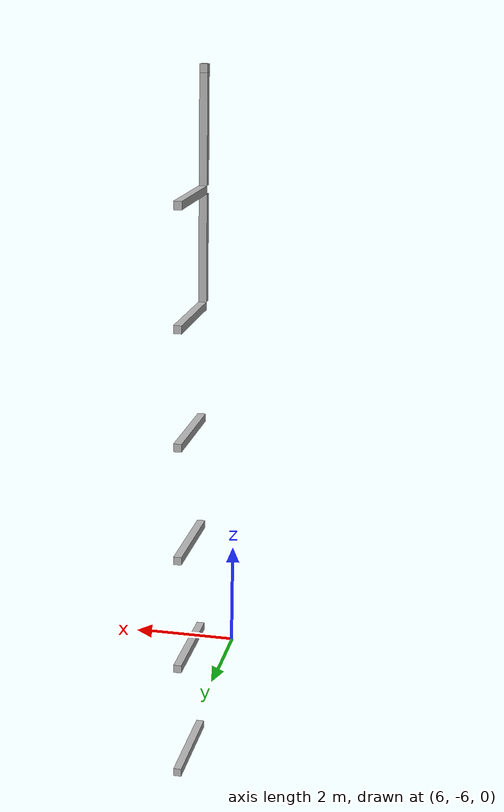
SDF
<sdf version="1.7">
 <world name="default">
  <model name="orthogonal_747_2.000.15_TS">
   <static>1</static>
   <link name="y_link_0_0_6">
    <inertial>
     <mass>1</mass>
     <inertia>
      <ixx>0.166667</ixx>
      <ixy>0</ixy>
      <ixz>0</ixz>
      <iyy>0.166667</iyy>
      <iyz>0</iyz>
      <izz>0.166667</izz>
     </inertia>
    </inertial>
    <pose>12.9 1.075 1.075 0 -0 0</pose>
    <visual name="visual_0">
     <laser_retro>134</laser_retro>
     <geometry><box><size>0.15 1e-06 0.15</size></box></geometry>
     <material>
      <script><name>Gazebo/Grey</name><uri>file://media/materials/scripts/gazebo.material</uri></script>
      <shader type="pixel"><normal_map>__default__</normal_map></shader>
      <ambient>0.678 0.498 0.659 1</ambient>
      <diffuse>0.7 0.7 0.7 1</diffuse>
      <specular>0.01 0.01 0.01 1</specular>
      <emissive>0 0 0 1</emissive>
     </material>
     <pose>0 -1 0 0 -0 0</pose>
     <transparency>1</transparency>
    </visual>
    <visual name="visual_1">
     <laser_retro>135</laser_retro>
     <geometry><box><size>0.15 1e-06 0.15</size></box></geometry>
     <material>
      <script><name>Gazebo/Grey</name><uri>file://media/materials/scripts/gazebo.material</uri></script>
      <shader type="pixel"><normal_map>__default__</normal_map></shader>
      <ambient>0.447 0.624 0.812 1</ambient>
      <diffuse>0.7 0.7 0.7 1</diffuse>
      <specular>0.01 0.01 0.01 1</specular>
      <emissive>0 0 0 1</emissive>
     </material>
     <pose>0 1 0 0 -0 0</pose>
     <transparency>1</transparency>
    </visual>
    <visual name="visual_2">
     <laser_retro>136</laser_retro>
     <geometry><box><size>0.15 2 1e-06</size></box></geometry>
     <material>
      <script><name>Gazebo/Grey</name><uri>file://media/materials/scripts/gazebo.material</uri></script>
      <shader type="pixel"><normal_map>__default__</normal_map></shader>
      <ambient>0.988 0.686 0.243 1</ambient>
      <diffuse>0.7 0.7 0.7 1</diffuse>
      <specular>0.01 0.01 0.01 1</specular>
      <emissive>0 0 0 1</emissive>
     </material>
     <pose>0 0 -0.075 0 -0 0</pose>
     <transparency>1</transparency>
    </visual>
    <visual name="visual_3">
     <laser_retro>137</laser_retro>
     <geometry><box><size>1e-06 2 0.15</size></box></geometry>
     <material>
      <script><name>Gazebo/Grey</name><uri>file://media/materials/scripts/gazebo.material</uri></script>
      <shader type="pixel"><normal_map>__default__</normal_map></shader>
      <ambient>0.988 0.914 0.31 1</ambient>
      <diffuse>0.7 0.7 0.7 1</diffuse>
      <specular>0.01 0.01 0.01 1</specular>
      <emissive>0 0 0 1</emissive>
     </material>
     <pose>0.075 0 0 0 -0 0</pose>
     <transparency>1</transparency>
    </visual>
    <visual name="visual_4">
     <laser_retro>138</laser_retro>
     <geometry><box><size>0.15 2 1e-06</size></box></geometry>
     <material>
      <script><name>Gazebo/Grey</name><uri>file://media/materials/scripts/gazebo.material</uri></script>
      <shader type="pixel"><normal_map>__default__</normal_map></shader>
      <ambient>0.937 0.161 0.161 1</ambient>
      <diffuse>0.7 0.7 0.7 1</diffuse>
      <specular>0.01 0.01 0.01 1</specular>
      <emissive>0 0 0 1</emissive>
     </material>
     <pose>0 0 0.075 0 -0 0</pose>
     <transparency>1</transparency>
    </visual>
    <visual name="visual_5">
     <laser_retro>139</laser_retro>
     <geometry><box><size>1e-06 2 0.15</size></box></geometry>
     <material>
      <script><name>Gazebo/Grey</name><uri>file://media/materials/scripts/gazebo.material</uri></script>
      <shader type="pixel"><normal_map>__default__</normal_map></shader>
      <ambient>0.541 0.886 0.204 1</ambient>
      <diffuse>0.7 0.7 0.7 1</diffuse>
      <specular>0.01 0.01 0.01 1</specular>
      <emissive>0 0 0 1</emissive>
     </material>
     <pose>-0.075 0 0 0 -0 0</pose>
     <transparency>1</transparency>
    </visual>
    <visual name="visual_texture">
     <geometry><box><size>0.149985 1.9998 0.149985</size></box></geometry>
     <material>
      <script>
       <uri>model://BASE_MODELS/simple_block_v2_textured/materials/scripts</uri>
       <uri>model://BASE_MODELS/simple_block_v2_textured/materials/textures</uri>
       <name>metal</name>
      </script>
     </material>
     <laser_retro>140</laser_retro>
    </visual>
    <collision name="collision">
     <geometry><box><size>0.15 2 0.15</size></box></geometry>
     <surface>
      <friction>
       <ode><mu>1</mu><mu2>1</mu2><fdir1>0 0 0</fdir1><slip1>0</slip1><slip2>0</slip2></ode>
       <torsional>
        <coefficient>1</coefficient>
        <patch_radius>0</patch_radius>
        <surface_radius>0</surface_radius>
        <use_patch_radius>1</use_patch_radius>
        <ode><slip>0</slip></ode>
       </torsional>
      </friction>
      <bounce><restitution_coefficient>0</restitution_coefficient><threshold>1e+06</threshold></bounce>
      <contact>
       <collide_without_contact>0</collide_without_contact>
       <collide_without_contact_bitmask>1</collide_without_contact_bitmask>
       <collide_bitmask>1</collide_bitmask>
       <ode>
        <soft_cfm>0</soft_cfm>
        <soft_erp>0.2</soft_erp>
        <kp>1e+13</kp>
        <kd>1</kd>
        <max_vel>0.01</max_vel>
        <min_depth>0</min_depth>
       </ode>
       <bullet>
        <split_impulse>1</split_impulse>
        <split_impulse_penetration_threshold>-0.01</split_impulse_penetration_threshold>
        <soft_cfm>0</soft_cfm>
        <soft_erp>0.2</soft_erp>
        <kp>1e+13</kp>
        <kd>1</kd>
       </bullet>
      </contact>
     </surface>
    </collision>
   </link>
   <link name="y_link_1_0_6">
    <inertial>
     <mass>1</mass>
     <inertia>
      <ixx>0.166667</ixx>
      <ixy>0</ixy>
      <ixz>0</ixz>
      <iyy>0.166667</iyy>
      <iyz>0</iyz>
      <izz>0.166667</izz>
     </inertia>
    </inertial>
    <pose>12.9 1.075 3.225 0 -0 0</pose>
    <visual name="visual_0">
     <laser_retro>925</laser_retro>
     <geometry><box><size>0.15 1e-06 0.15</size></box></geometry>
     <material>
      <script><name>Gazebo/Grey</name><uri>file://media/materials/scripts/gazebo.material</uri></script>
      <shader type="pixel"><normal_map>__default__</normal_map></shader>
      <ambient>0.678 0.498 0.659 1</ambient>
      <diffuse>0.7 0.7 0.7 1</diffuse>
      <specular>0.01 0.01 0.01 1</specular>
      <emissive>0 0 0 1</emissive>
     </material>
     <pose>0 -1 0 0 -0 0</pose>
     <transparency>1</transparency>
    </visual>
    <visual name="visual_1">
     <laser_retro>926</laser_retro>
     <geometry><box><size>0.15 1e-06 0.15</size></box></geometry>
     <material>
      <script><name>Gazebo/Grey</name><uri>file://media/materials/scripts/gazebo.material</uri></script>
      <shader type="pixel"><normal_map>__default__</normal_map></shader>
      <ambient>0.447 0.624 0.812 1</ambient>
      <diffuse>0.7 0.7 0.7 1</diffuse>
      <specular>0.01 0.01 0.01 1</specular>
      <emissive>0 0 0 1</emissive>
     </material>
     <pose>0 1 0 0 -0 0</pose>
     <transparency>1</transparency>
    </visual>
    <visual name="visual_2">
     <laser_retro>927</laser_retro>
     <geometry><box><size>0.15 2 1e-06</size></box></geometry>
     <material>
      <script><name>Gazebo/Grey</name><uri>file://media/materials/scripts/gazebo.material</uri></script>
      <shader type="pixel"><normal_map>__default__</normal_map></shader>
      <ambient>0.988 0.686 0.243 1</ambient>
      <diffuse>0.7 0.7 0.7 1</diffuse>
      <specular>0.01 0.01 0.01 1</specular>
      <emissive>0 0 0 1</emissive>
     </material>
     <pose>0 0 -0.075 0 -0 0</pose>
     <transparency>1</transparency>
    </visual>
    <visual name="visual_3">
     <laser_retro>928</laser_retro>
     <geometry><box><size>1e-06 2 0.15</size></box></geometry>
     <material>
      <script><name>Gazebo/Grey</name><uri>file://media/materials/scripts/gazebo.material</uri></script>
      <shader type="pixel"><normal_map>__default__</normal_map></shader>
      <ambient>0.988 0.914 0.31 1</ambient>
      <diffuse>0.7 0.7 0.7 1</diffuse>
      <specular>0.01 0.01 0.01 1</specular>
      <emissive>0 0 0 1</emissive>
     </material>
     <pose>0.075 0 0 0 -0 0</pose>
     <transparency>1</transparency>
    </visual>
    <visual name="visual_4">
     <laser_retro>929</laser_retro>
     <geometry><box><size>0.15 2 1e-06</size></box></geometry>
     <material>
      <script><name>Gazebo/Grey</name><uri>file://media/materials/scripts/gazebo.material</uri></script>
      <shader type="pixel"><normal_map>__default__</normal_map></shader>
      <ambient>0.937 0.161 0.161 1</ambient>
      <diffuse>0.7 0.7 0.7 1</diffuse>
      <specular>0.01 0.01 0.01 1</specular>
      <emissive>0 0 0 1</emissive>
     </material>
     <pose>0 0 0.075 0 -0 0</pose>
     <transparency>1</transparency>
    </visual>
    <visual name="visual_5">
     <laser_retro>930</laser_retro>
     <geometry><box><size>1e-06 2 0.15</size></box></geometry>
     <material>
      <script><name>Gazebo/Grey</name><uri>file://media/materials/scripts/gazebo.material</uri></script>
      <shader type="pixel"><normal_map>__default__</normal_map></shader>
      <ambient>0.541 0.886 0.204 1</ambient>
      <diffuse>0.7 0.7 0.7 1</diffuse>
      <specular>0.01 0.01 0.01 1</specular>
      <emissive>0 0 0 1</emissive>
     </material>
     <pose>-0.075 0 0 0 -0 0</pose>
     <transparency>1</transparency>
    </visual>
    <visual name="visual_texture">
     <geometry><box><size>0.149985 1.9998 0.149985</size></box></geometry>
     <material>
      <script>
       <uri>model://BASE_MODELS/simple_block_v2_textured/materials/scripts</uri>
       <uri>model://BASE_MODELS/simple_block_v2_textured/materials/textures</uri>
       <name>metal</name>
      </script>
     </material>
     <laser_retro>931</laser_retro>
    </visual>
    <collision name="collision">
     <geometry><box><size>0.15 2 0.15</size></box></geometry>
     <surface>
      <friction>
       <ode><mu>1</mu><mu2>1</mu2><fdir1>0 0 0</fdir1><slip1>0</slip1><slip2>0</slip2></ode>
       <torsional>
        <coefficient>1</coefficient>
        <patch_radius>0</patch_radius>
        <surface_radius>0</surface_radius>
        <use_patch_radius>1</use_patch_radius>
        <ode><slip>0</slip></ode>
       </torsional>
      </friction>
      <bounce><restitution_coefficient>0</restitution_coefficient><threshold>1e+06</threshold></bounce>
      <contact>
       <collide_without_contact>0</collide_without_contact>
       <collide_without_contact_bitmask>1</collide_without_contact_bitmask>
       <collide_bitmask>1</collide_bitmask>
       <ode>
        <soft_cfm>0</soft_cfm>
        <soft_erp>0.2</soft_erp>
        <kp>1e+13</kp>
        <kd>1</kd>
        <max_vel>0.01</max_vel>
        <min_depth>0</min_depth>
       </ode>
       <bullet>
        <split_impulse>1</split_impulse>
        <split_impulse_penetration_threshold>-0.01</split_impulse_penetration_threshold>
        <soft_cfm>0</soft_cfm>
        <soft_erp>0.2</soft_erp>
        <kp>1e+13</kp>
        <kd>1</kd>
       </bullet>
      </contact>
     </surface>
    </collision>
   </link>
   <link name="y_link_2_0_6">
    <inertial>
     <mass>1</mass>
     <inertia>
      <ixx>0.166667</ixx>
      <ixy>0</ixy>
      <ixz>0</ixz>
      <iyy>0.166667</iyy>
      <iyz>0</iyz>
      <izz>0.166667</izz>
     </inertia>
    </inertial>
    <pose>12.9 1.075 5.375 0 -0 0</pose>
    <visual name="visual_0">
     <laser_retro>1828</laser_retro>
     <geometry><box><size>0.15 1e-06 0.15</size></box></geometry>
     <material>
      <script><name>Gazebo/Grey</name><uri>file://media/materials/scripts/gazebo.material</uri></script>
      <shader type="pixel"><normal_map>__default__</normal_map></shader>
      <ambient>0.678 0.498 0.659 1</ambient>
      <diffuse>0.7 0.7 0.7 1</diffuse>
      <specular>0.01 0.01 0.01 1</specular>
      <emissive>0 0 0 1</emissive>
     </material>
     <pose>0 -1 0 0 -0 0</pose>
     <transparency>1</transparency>
    </visual>
    <visual name="visual_1">
     <laser_retro>1829</laser_retro>
     <geometry><box><size>0.15 1e-06 0.15</size></box></geometry>
     <material>
      <script><name>Gazebo/Grey</name><uri>file://media/materials/scripts/gazebo.material</uri></script>
      <shader type="pixel"><normal_map>__default__</normal_map></shader>
      <ambient>0.447 0.624 0.812 1</ambient>
      <diffuse>0.7 0.7 0.7 1</diffuse>
      <specular>0.01 0.01 0.01 1</specular>
      <emissive>0 0 0 1</emissive>
     </material>
     <pose>0 1 0 0 -0 0</pose>
     <transparency>1</transparency>
    </visual>
    <visual name="visual_2">
     <laser_retro>1830</laser_retro>
     <geometry><box><size>0.15 2 1e-06</size></box></geometry>
     <material>
      <script><name>Gazebo/Grey</name><uri>file://media/materials/scripts/gazebo.material</uri></script>
      <shader type="pixel"><normal_map>__default__</normal_map></shader>
      <ambient>0.988 0.686 0.243 1</ambient>
      <diffuse>0.7 0.7 0.7 1</diffuse>
      <specular>0.01 0.01 0.01 1</specular>
      <emissive>0 0 0 1</emissive>
     </material>
     <pose>0 0 -0.075 0 -0 0</pose>
     <transparency>1</transparency>
    </visual>
    <visual name="visual_3">
     <laser_retro>1831</laser_retro>
     <geometry><box><size>1e-06 2 0.15</size></box></geometry>
     <material>
      <script><name>Gazebo/Grey</name><uri>file://media/materials/scripts/gazebo.material</uri></script>
      <shader type="pixel"><normal_map>__default__</normal_map></shader>
      <ambient>0.988 0.914 0.31 1</ambient>
      <diffuse>0.7 0.7 0.7 1</diffuse>
      <specular>0.01 0.01 0.01 1</specular>
      <emissive>0 0 0 1</emissive>
     </material>
     <pose>0.075 0 0 0 -0 0</pose>
     <transparency>1</transparency>
    </visual>
    <visual name="visual_4">
     <laser_retro>1832</laser_retro>
     <geometry><box><size>0.15 2 1e-06</size></box></geometry>
     <material>
      <script><name>Gazebo/Grey</name><uri>file://media/materials/scripts/gazebo.material</uri></script>
      <shader type="pixel"><normal_map>__default__</normal_map></shader>
      <ambient>0.937 0.161 0.161 1</ambient>
      <diffuse>0.7 0.7 0.7 1</diffuse>
      <specular>0.01 0.01 0.01 1</specular>
      <emissive>0 0 0 1</emissive>
     </material>
     <pose>0 0 0.075 0 -0 0</pose>
     <transparency>1</transparency>
    </visual>
    <visual name="visual_5">
     <laser_retro>1833</laser_retro>
     <geometry><box><size>1e-06 2 0.15</size></box></geometry>
     <material>
      <script><name>Gazebo/Grey</name><uri>file://media/materials/scripts/gazebo.material</uri></script>
      <shader type="pixel"><normal_map>__default__</normal_map></shader>
      <ambient>0.541 0.886 0.204 1</ambient>
      <diffuse>0.7 0.7 0.7 1</diffuse>
      <specular>0.01 0.01 0.01 1</specular>
      <emissive>0 0 0 1</emissive>
     </material>
     <pose>-0.075 0 0 0 -0 0</pose>
     <transparency>1</transparency>
    </visual>
    <visual name="visual_texture">
     <geometry><box><size>0.149985 1.9998 0.149985</size></box></geometry>
     <material>
      <script>
       <uri>model://BASE_MODELS/simple_block_v2_textured/materials/scripts</uri>
       <uri>model://BASE_MODELS/simple_block_v2_textured/materials/textures</uri>
       <name>metal</name>
      </script>
     </material>
     <laser_retro>1834</laser_retro>
    </visual>
    <collision name="collision">
     <geometry><box><size>0.15 2 0.15</size></box></geometry>
     <surface>
      <friction>
       <ode><mu>1</mu><mu2>1</mu2><fdir1>0 0 0</fdir1><slip1>0</slip1><slip2>0</slip2></ode>
       <torsional>
        <coefficient>1</coefficient>
        <patch_radius>0</patch_radius>
        <surface_radius>0</surface_radius>
        <use_patch_radius>1</use_patch_radius>
        <ode><slip>0</slip></ode>
       </torsional>
      </friction>
      <bounce><restitution_coefficient>0</restitution_coefficient><threshold>1e+06</threshold></bounce>
      <contact>
       <collide_without_contact>0</collide_without_contact>
       <collide_without_contact_bitmask>1</collide_without_contact_bitmask>
       <collide_bitmask>1</collide_bitmask>
       <ode>
        <soft_cfm>0</soft_cfm>
        <soft_erp>0.2</soft_erp>
        <kp>1e+13</kp>
        <kd>1</kd>
        <max_vel>0.01</max_vel>
        <min_depth>0</min_depth>
       </ode>
       <bullet>
        <split_impulse>1</split_impulse>
        <split_impulse_penetration_threshold>-0.01</split_impulse_penetration_threshold>
        <soft_cfm>0</soft_cfm>
        <soft_erp>0.2</soft_erp>
        <kp>1e+13</kp>
        <kd>1</kd>
       </bullet>
      </contact>
     </surface>
    </collision>
   </link>
   <link name="y_link_3_0_6">
    <inertial>
     <mass>1</mass>
     <inertia>
      <ixx>0.166667</ixx>
      <ixy>0</ixy>
      <ixz>0</ixz>
      <iyy>0.166667</iyy>
      <iyz>0</iyz>
      <izz>0.166667</izz>
     </inertia>
    </inertial>
    <pose>12.9 1.075 7.525 0 -0 0</pose>
    <visual name="visual_0">
     <laser_retro>2731</laser_retro>
     <geometry><box><size>0.15 1e-06 0.15</size></box></geometry>
     <material>
      <script><name>Gazebo/Grey</name><uri>file://media/materials/scripts/gazebo.material</uri></script>
      <shader type="pixel"><normal_map>__default__</normal_map></shader>
      <ambient>0.678 0.498 0.659 1</ambient>
      <diffuse>0.7 0.7 0.7 1</diffuse>
      <specular>0.01 0.01 0.01 1</specular>
      <emissive>0 0 0 1</emissive>
     </material>
     <pose>0 -1 0 0 -0 0</pose>
     <transparency>1</transparency>
    </visual>
    <visual name="visual_1">
     <laser_retro>2732</laser_retro>
     <geometry><box><size>0.15 1e-06 0.15</size></box></geometry>
     <material>
      <script><name>Gazebo/Grey</name><uri>file://media/materials/scripts/gazebo.material</uri></script>
      <shader type="pixel"><normal_map>__default__</normal_map></shader>
      <ambient>0.447 0.624 0.812 1</ambient>
      <diffuse>0.7 0.7 0.7 1</diffuse>
      <specular>0.01 0.01 0.01 1</specular>
      <emissive>0 0 0 1</emissive>
     </material>
     <pose>0 1 0 0 -0 0</pose>
     <transparency>1</transparency>
    </visual>
    <visual name="visual_2">
     <laser_retro>2733</laser_retro>
     <geometry><box><size>0.15 2 1e-06</size></box></geometry>
     <material>
      <script><name>Gazebo/Grey</name><uri>file://media/materials/scripts/gazebo.material</uri></script>
      <shader type="pixel"><normal_map>__default__</normal_map></shader>
      <ambient>0.988 0.686 0.243 1</ambient>
      <diffuse>0.7 0.7 0.7 1</diffuse>
      <specular>0.01 0.01 0.01 1</specular>
      <emissive>0 0 0 1</emissive>
     </material>
     <pose>0 0 -0.075 0 -0 0</pose>
     <transparency>1</transparency>
    </visual>
    <visual name="visual_3">
     <laser_retro>2734</laser_retro>
     <geometry><box><size>1e-06 2 0.15</size></box></geometry>
     <material>
      <script><name>Gazebo/Grey</name><uri>file://media/materials/scripts/gazebo.material</uri></script>
      <shader type="pixel"><normal_map>__default__</normal_map></shader>
      <ambient>0.988 0.914 0.31 1</ambient>
      <diffuse>0.7 0.7 0.7 1</diffuse>
      <specular>0.01 0.01 0.01 1</specular>
      <emissive>0 0 0 1</emissive>
     </material>
     <pose>0.075 0 0 0 -0 0</pose>
     <transparency>1</transparency>
    </visual>
    <visual name="visual_4">
     <laser_retro>2735</laser_retro>
     <geometry><box><size>0.15 2 1e-06</size></box></geometry>
     <material>
      <script><name>Gazebo/Grey</name><uri>file://media/materials/scripts/gazebo.material</uri></script>
      <shader type="pixel"><normal_map>__default__</normal_map></shader>
      <ambient>0.937 0.161 0.161 1</ambient>
      <diffuse>0.7 0.7 0.7 1</diffuse>
      <specular>0.01 0.01 0.01 1</specular>
      <emissive>0 0 0 1</emissive>
     </material>
     <pose>0 0 0.075 0 -0 0</pose>
     <transparency>1</transparency>
    </visual>
    <visual name="visual_5">
     <laser_retro>2736</laser_retro>
     <geometry><box><size>1e-06 2 0.15</size></box></geometry>
     <material>
      <script><name>Gazebo/Grey</name><uri>file://media/materials/scripts/gazebo.material</uri></script>
      <shader type="pixel"><normal_map>__default__</normal_map></shader>
      <ambient>0.541 0.886 0.204 1</ambient>
      <diffuse>0.7 0.7 0.7 1</diffuse>
      <specular>0.01 0.01 0.01 1</specular>
      <emissive>0 0 0 1</emissive>
     </material>
     <pose>-0.075 0 0 0 -0 0</pose>
     <transparency>1</transparency>
    </visual>
    <visual name="visual_texture">
     <geometry><box><size>0.149985 1.9998 0.149985</size></box></geometry>
     <material>
      <script>
       <uri>model://BASE_MODELS/simple_block_v2_textured/materials/scripts</uri>
       <uri>model://BASE_MODELS/simple_block_v2_textured/materials/textures</uri>
       <name>metal</name>
      </script>
     </material>
     <laser_retro>2737</laser_retro>
    </visual>
    <collision name="collision">
     <geometry><box><size>0.15 2 0.15</size></box></geometry>
     <surface>
      <friction>
       <ode><mu>1</mu><mu2>1</mu2><fdir1>0 0 0</fdir1><slip1>0</slip1><slip2>0</slip2></ode>
       <torsional>
        <coefficient>1</coefficient>
        <patch_radius>0</patch_radius>
        <surface_radius>0</surface_radius>
        <use_patch_radius>1</use_patch_radius>
        <ode><slip>0</slip></ode>
       </torsional>
      </friction>
      <bounce><restitution_coefficient>0</restitution_coefficient><threshold>1e+06</threshold></bounce>
      <contact>
       <collide_without_contact>0</collide_without_contact>
       <collide_without_contact_bitmask>1</collide_without_contact_bitmask>
       <collide_bitmask>1</collide_bitmask>
       <ode>
        <soft_cfm>0</soft_cfm>
        <soft_erp>0.2</soft_erp>
        <kp>1e+13</kp>
        <kd>1</kd>
        <max_vel>0.01</max_vel>
        <min_depth>0</min_depth>
       </ode>
       <bullet>
        <split_impulse>1</split_impulse>
        <split_impulse_penetration_threshold>-0.01</split_impulse_penetration_threshold>
        <soft_cfm>0</soft_cfm>
        <soft_erp>0.2</soft_erp>
        <kp>1e+13</kp>
        <kd>1</kd>
       </bullet>
      </contact>
     </surface>
    </collision>
   </link>
   <link name="y_link_4_0_6">
    <inertial>
     <mass>1</mass>
     <inertia>
      <ixx>0.166667</ixx>
      <ixy>0</ixy>
      <ixz>0</ixz>
      <iyy>0.166667</iyy>
      <iyz>0</iyz>
      <izz>0.166667</izz>
     </inertia>
    </inertial>
    <pose>12.9 1.075 9.675 0 -0 0</pose>
    <visual name="visual_0">
     <laser_retro>3634</laser_retro>
     <geometry><box><size>0.15 1e-06 0.15</size></box></geometry>
     <material>
      <script><name>Gazebo/Grey</name><uri>file://media/materials/scripts/gazebo.material</uri></script>
      <shader type="pixel"><normal_map>__default__</normal_map></shader>
      <ambient>0.678 0.498 0.659 1</ambient>
      <diffuse>0.7 0.7 0.7 1</diffuse>
      <specular>0.01 0.01 0.01 1</specular>
      <emissive>0 0 0 1</emissive>
     </material>
     <pose>0 -1 0 0 -0 0</pose>
     <transparency>1</transparency>
    </visual>
    <visual name="visual_1">
     <laser_retro>3635</laser_retro>
     <geometry><box><size>0.15 1e-06 0.15</size></box></geometry>
     <material>
      <script><name>Gazebo/Grey</name><uri>file://media/materials/scripts/gazebo.material</uri></script>
      <shader type="pixel"><normal_map>__default__</normal_map></shader>
      <ambient>0.447 0.624 0.812 1</ambient>
      <diffuse>0.7 0.7 0.7 1</diffuse>
      <specular>0.01 0.01 0.01 1</specular>
      <emissive>0 0 0 1</emissive>
     </material>
     <pose>0 1 0 0 -0 0</pose>
     <transparency>1</transparency>
    </visual>
    <visual name="visual_2">
     <laser_retro>3636</laser_retro>
     <geometry><box><size>0.15 2 1e-06</size></box></geometry>
     <material>
      <script><name>Gazebo/Grey</name><uri>file://media/materials/scripts/gazebo.material</uri></script>
      <shader type="pixel"><normal_map>__default__</normal_map></shader>
      <ambient>0.988 0.686 0.243 1</ambient>
      <diffuse>0.7 0.7 0.7 1</diffuse>
      <specular>0.01 0.01 0.01 1</specular>
      <emissive>0 0 0 1</emissive>
     </material>
     <pose>0 0 -0.075 0 -0 0</pose>
     <transparency>1</transparency>
    </visual>
    <visual name="visual_3">
     <laser_retro>3637</laser_retro>
     <geometry><box><size>1e-06 2 0.15</size></box></geometry>
     <material>
      <script><name>Gazebo/Grey</name><uri>file://media/materials/scripts/gazebo.material</uri></script>
      <shader type="pixel"><normal_map>__default__</normal_map></shader>
      <ambient>0.988 0.914 0.31 1</ambient>
      <diffuse>0.7 0.7 0.7 1</diffuse>
      <specular>0.01 0.01 0.01 1</specular>
      <emissive>0 0 0 1</emissive>
     </material>
     <pose>0.075 0 0 0 -0 0</pose>
     <transparency>1</transparency>
    </visual>
    <visual name="visual_4">
     <laser_retro>3638</laser_retro>
     <geometry><box><size>0.15 2 1e-06</size></box></geometry>
     <material>
      <script><name>Gazebo/Grey</name><uri>file://media/materials/scripts/gazebo.material</uri></script>
      <shader type="pixel"><normal_map>__default__</normal_map></shader>
      <ambient>0.937 0.161 0.161 1</ambient>
      <diffuse>0.7 0.7 0.7 1</diffuse>
      <specular>0.01 0.01 0.01 1</specular>
      <emissive>0 0 0 1</emissive>
     </material>
     <pose>0 0 0.075 0 -0 0</pose>
     <transparency>1</transparency>
    </visual>
    <visual name="visual_5">
     <laser_retro>3639</laser_retro>
     <geometry><box><size>1e-06 2 0.15</size></box></geometry>
     <material>
      <script><name>Gazebo/Grey</name><uri>file://media/materials/scripts/gazebo.material</uri></script>
      <shader type="pixel"><normal_map>__default__</normal_map></shader>
      <ambient>0.541 0.886 0.204 1</ambient>
      <diffuse>0.7 0.7 0.7 1</diffuse>
      <specular>0.01 0.01 0.01 1</specular>
      <emissive>0 0 0 1</emissive>
     </material>
     <pose>-0.075 0 0 0 -0 0</pose>
     <transparency>1</transparency>
    </visual>
    <visual name="visual_texture">
     <geometry><box><size>0.149985 1.9998 0.149985</size></box></geometry>
     <material>
      <script>
       <uri>model://BASE_MODELS/simple_block_v2_textured/materials/scripts</uri>
       <uri>model://BASE_MODELS/simple_block_v2_textured/materials/textures</uri>
       <name>metal</name>
      </script>
     </material>
     <laser_retro>3640</laser_retro>
    </visual>
    <collision name="collision">
     <geometry><box><size>0.15 2 0.15</size></box></geometry>
     <surface>
      <friction>
       <ode><mu>1</mu><mu2>1</mu2><fdir1>0 0 0</fdir1><slip1>0</slip1><slip2>0</slip2></ode>
       <torsional>
        <coefficient>1</coefficient>
        <patch_radius>0</patch_radius>
        <surface_radius>0</surface_radius>
        <use_patch_radius>1</use_patch_radius>
        <ode><slip>0</slip></ode>
       </torsional>
      </friction>
      <bounce><restitution_coefficient>0</restitution_coefficient><threshold>1e+06</threshold></bounce>
      <contact>
       <collide_without_contact>0</collide_without_contact>
       <collide_without_contact_bitmask>1</collide_without_contact_bitmask>
       <collide_bitmask>1</collide_bitmask>
       <ode>
        <soft_cfm>0</soft_cfm>
        <soft_erp>0.2</soft_erp>
        <kp>1e+13</kp>
        <kd>1</kd>
        <max_vel>0.01</max_vel>
        <min_depth>0</min_depth>
       </ode>
       <bullet>
        <split_impulse>1</split_impulse>
        <split_impulse_penetration_threshold>-0.01</split_impulse_penetration_threshold>
        <soft_cfm>0</soft_cfm>
        <soft_erp>0.2</soft_erp>
        <kp>1e+13</kp>
        <kd>1</kd>
       </bullet>
      </contact>
     </surface>
    </collision>
   </link>
   <link name="y_link_5_0_6">
    <inertial>
     <mass>1</mass>
     <inertia>
      <ixx>0.166667</ixx>
      <ixy>0</ixy>
      <ixz>0</ixz>
      <iyy>0.166667</iyy>
      <iyz>0</iyz>
      <izz>0.166667</izz>
     </inertia>
    </inertial>
    <pose>12.9 1.075 11.825 0 -0 0</pose>
    <visual name="visual_0">
     <laser_retro>4537</laser_retro>
     <geometry><box><size>0.15 1e-06 0.15</size></box></geometry>
     <material>
      <script><name>Gazebo/Grey</name><uri>file://media/materials/scripts/gazebo.material</uri></script>
      <shader type="pixel"><normal_map>__default__</normal_map></shader>
      <ambient>0.678 0.498 0.659 1</ambient>
      <diffuse>0.7 0.7 0.7 1</diffuse>
      <specular>0.01 0.01 0.01 1</specular>
      <emissive>0 0 0 1</emissive>
     </material>
     <pose>0 -1 0 0 -0 0</pose>
     <transparency>1</transparency>
    </visual>
    <visual name="visual_1">
     <laser_retro>4538</laser_retro>
     <geometry><box><size>0.15 1e-06 0.15</size></box></geometry>
     <material>
      <script><name>Gazebo/Grey</name><uri>file://media/materials/scripts/gazebo.material</uri></script>
      <shader type="pixel"><normal_map>__default__</normal_map></shader>
      <ambient>0.447 0.624 0.812 1</ambient>
      <diffuse>0.7 0.7 0.7 1</diffuse>
      <specular>0.01 0.01 0.01 1</specular>
      <emissive>0 0 0 1</emissive>
     </material>
     <pose>0 1 0 0 -0 0</pose>
     <transparency>1</transparency>
    </visual>
    <visual name="visual_2">
     <laser_retro>4539</laser_retro>
     <geometry><box><size>0.15 2 1e-06</size></box></geometry>
     <material>
      <script><name>Gazebo/Grey</name><uri>file://media/materials/scripts/gazebo.material</uri></script>
      <shader type="pixel"><normal_map>__default__</normal_map></shader>
      <ambient>0.988 0.686 0.243 1</ambient>
      <diffuse>0.7 0.7 0.7 1</diffuse>
      <specular>0.01 0.01 0.01 1</specular>
      <emissive>0 0 0 1</emissive>
     </material>
     <pose>0 0 -0.075 0 -0 0</pose>
     <transparency>1</transparency>
    </visual>
    <visual name="visual_3">
     <laser_retro>4540</laser_retro>
     <geometry><box><size>1e-06 2 0.15</size></box></geometry>
     <material>
      <script><name>Gazebo/Grey</name><uri>file://media/materials/scripts/gazebo.material</uri></script>
      <shader type="pixel"><normal_map>__default__</normal_map></shader>
      <ambient>0.988 0.914 0.31 1</ambient>
      <diffuse>0.7 0.7 0.7 1</diffuse>
      <specular>0.01 0.01 0.01 1</specular>
      <emissive>0 0 0 1</emissive>
     </material>
     <pose>0.075 0 0 0 -0 0</pose>
     <transparency>1</transparency>
    </visual>
    <visual name="visual_4">
     <laser_retro>4541</laser_retro>
     <geometry><box><size>0.15 2 1e-06</size></box></geometry>
     <material>
      <script><name>Gazebo/Grey</name><uri>file://media/materials/scripts/gazebo.material</uri></script>
      <shader type="pixel"><normal_map>__default__</normal_map></shader>
      <ambient>0.937 0.161 0.161 1</ambient>
      <diffuse>0.7 0.7 0.7 1</diffuse>
      <specular>0.01 0.01 0.01 1</specular>
      <emissive>0 0 0 1</emissive>
     </material>
     <pose>0 0 0.075 0 -0 0</pose>
     <transparency>1</transparency>
    </visual>
    <visual name="visual_5">
     <laser_retro>4542</laser_retro>
     <geometry><box><size>1e-06 2 0.15</size></box></geometry>
     <material>
      <script><name>Gazebo/Grey</name><uri>file://media/materials/scripts/gazebo.material</uri></script>
      <shader type="pixel"><normal_map>__default__</normal_map></shader>
      <ambient>0.541 0.886 0.204 1</ambient>
      <diffuse>0.7 0.7 0.7 1</diffuse>
      <specular>0.01 0.01 0.01 1</specular>
      <emissive>0 0 0 1</emissive>
     </material>
     <pose>-0.075 0 0 0 -0 0</pose>
     <transparency>1</transparency>
    </visual>
    <visual name="visual_texture">
     <geometry><box><size>0.149985 1.9998 0.149985</size></box></geometry>
     <material>
      <script>
       <uri>model://BASE_MODELS/simple_block_v2_textured/materials/scripts</uri>
       <uri>model://BASE_MODELS/simple_block_v2_textured/materials/textures</uri>
       <name>metal</name>
      </script>
     </material>
     <laser_retro>4543</laser_retro>
    </visual>
    <collision name="collision">
     <geometry><box><size>0.15 2 0.15</size></box></geometry>
     <surface>
      <friction>
       <ode><mu>1</mu><mu2>1</mu2><fdir1>0 0 0</fdir1><slip1>0</slip1><slip2>0</slip2></ode>
       <torsional>
        <coefficient>1</coefficient>
        <patch_radius>0</patch_radius>
        <surface_radius>0</surface_radius>
        <use_patch_radius>1</use_patch_radius>
        <ode><slip>0</slip></ode>
       </torsional>
      </friction>
      <bounce><restitution_coefficient>0</restitution_coefficient><threshold>1e+06</threshold></bounce>
      <contact>
       <collide_without_contact>0</collide_without_contact>
       <collide_without_contact_bitmask>1</collide_without_contact_bitmask>
       <collide_bitmask>1</collide_bitmask>
       <ode>
        <soft_cfm>0</soft_cfm>
        <soft_erp>0.2</soft_erp>
        <kp>1e+13</kp>
        <kd>1</kd>
        <max_vel>0.01</max_vel>
        <min_depth>0</min_depth>
       </ode>
       <bullet>
        <split_impulse>1</split_impulse>
        <split_impulse_penetration_threshold>-0.01</split_impulse_penetration_threshold>
        <soft_cfm>0</soft_cfm>
        <soft_erp>0.2</soft_erp>
        <kp>1e+13</kp>
        <kd>1</kd>
       </bullet>
      </contact>
     </surface>
    </collision>
   </link>
   <link name="z_link_5_0_6">
    <inertial>
     <mass>1</mass>
     <inertia>
      <ixx>0.166667</ixx>
      <ixy>0</ixy>
      <ixz>0</ixz>
      <iyy>0.166667</iyy>
      <iyz>0</iyz>
      <izz>0.166667</izz>
     </inertia>
    </inertial>
    <pose>12.9 0 10.75 0 -0 0</pose>
    <visual name="visual_0">
     <laser_retro>4551</laser_retro>
     <geometry><box><size>0.15 1e-06 2</size></box></geometry>
     <material>
      <script><name>Gazebo/Grey</name><uri>file://media/materials/scripts/gazebo.material</uri></script>
      <shader type="pixel"><normal_map>__default__</normal_map></shader>
      <ambient>0.678 0.498 0.659 1</ambient>
      <diffuse>0.7 0.7 0.7 1</diffuse>
      <specular>0.01 0.01 0.01 1</specular>
      <emissive>0 0 0 1</emissive>
     </material>
     <pose>0 -0.075 0 0 -0 0</pose>
     <transparency>1</transparency>
    </visual>
    <visual name="visual_1">
     <laser_retro>4552</laser_retro>
     <geometry><box><size>0.15 1e-06 2</size></box></geometry>
     <material>
      <script><name>Gazebo/Grey</name><uri>file://media/materials/scripts/gazebo.material</uri></script>
      <shader type="pixel"><normal_map>__default__</normal_map></shader>
      <ambient>0.447 0.624 0.812 1</ambient>
      <diffuse>0.7 0.7 0.7 1</diffuse>
      <specular>0.01 0.01 0.01 1</specular>
      <emissive>0 0 0 1</emissive>
     </material>
     <pose>0 0.075 0 0 -0 0</pose>
     <transparency>1</transparency>
    </visual>
    <visual name="visual_2">
     <laser_retro>4553</laser_retro>
     <geometry><box><size>0.15 0.15 1e-06</size></box></geometry>
     <material>
      <script><name>Gazebo/Grey</name><uri>file://media/materials/scripts/gazebo.material</uri></script>
      <shader type="pixel"><normal_map>__default__</normal_map></shader>
      <ambient>0.988 0.686 0.243 1</ambient>
      <diffuse>0.7 0.7 0.7 1</diffuse>
      <specular>0.01 0.01 0.01 1</specular>
      <emissive>0 0 0 1</emissive>
     </material>
     <pose>0 0 -1 0 -0 0</pose>
     <transparency>1</transparency>
    </visual>
    <visual name="visual_3">
     <laser_retro>4554</laser_retro>
     <geometry><box><size>1e-06 0.15 2</size></box></geometry>
     <material>
      <script><name>Gazebo/Grey</name><uri>file://media/materials/scripts/gazebo.material</uri></script>
      <shader type="pixel"><normal_map>__default__</normal_map></shader>
      <ambient>0.988 0.914 0.31 1</ambient>
      <diffuse>0.7 0.7 0.7 1</diffuse>
      <specular>0.01 0.01 0.01 1</specular>
      <emissive>0 0 0 1</emissive>
     </material>
     <pose>0.075 0 0 0 -0 0</pose>
     <transparency>1</transparency>
    </visual>
    <visual name="visual_4">
     <laser_retro>4555</laser_retro>
     <geometry><box><size>0.15 0.15 1e-06</size></box></geometry>
     <material>
      <script><name>Gazebo/Grey</name><uri>file://media/materials/scripts/gazebo.material</uri></script>
      <shader type="pixel"><normal_map>__default__</normal_map></shader>
      <ambient>0.937 0.161 0.161 1</ambient>
      <diffuse>0.7 0.7 0.7 1</diffuse>
      <specular>0.01 0.01 0.01 1</specular>
      <emissive>0 0 0 1</emissive>
     </material>
     <pose>0 0 1 0 -0 0</pose>
     <transparency>1</transparency>
    </visual>
    <visual name="visual_5">
     <laser_retro>4556</laser_retro>
     <geometry><box><size>1e-06 0.15 2</size></box></geometry>
     <material>
      <script><name>Gazebo/Grey</name><uri>file://media/materials/scripts/gazebo.material</uri></script>
      <shader type="pixel"><normal_map>__default__</normal_map></shader>
      <ambient>0.541 0.886 0.204 1</ambient>
      <diffuse>0.7 0.7 0.7 1</diffuse>
      <specular>0.01 0.01 0.01 1</specular>
      <emissive>0 0 0 1</emissive>
     </material>
     <pose>-0.075 0 0 0 -0 0</pose>
     <transparency>1</transparency>
    </visual>
    <visual name="visual_texture">
     <geometry><box><size>0.149985 0.149985 1.9998</size></box></geometry>
     <material>
      <script>
       <uri>model://BASE_MODELS/simple_block_v2_textured/materials/scripts</uri>
       <uri>model://BASE_MODELS/simple_block_v2_textured/materials/textures</uri>
       <name>metal</name>
      </script>
     </material>
     <laser_retro>4557</laser_retro>
    </visual>
    <collision name="collision">
     <geometry><box><size>0.15 0.15 2</size></box></geometry>
     <surface>
      <friction>
       <ode><mu>1</mu><mu2>1</mu2><fdir1>0 0 0</fdir1><slip1>0</slip1><slip2>0</slip2></ode>
       <torsional>
        <coefficient>1</coefficient>
        <patch_radius>0</patch_radius>
        <surface_radius>0</surface_radius>
        <use_patch_radius>1</use_patch_radius>
        <ode><slip>0</slip></ode>
       </torsional>
      </friction>
      <bounce><restitution_coefficient>0</restitution_coefficient><threshold>1e+06</threshold></bounce>
      <contact>
       <collide_without_contact>0</collide_without_contact>
       <collide_without_contact_bitmask>1</collide_without_contact_bitmask>
       <collide_bitmask>1</collide_bitmask>
       <ode>
        <soft_cfm>0</soft_cfm>
        <soft_erp>0.2</soft_erp>
        <kp>1e+13</kp>
        <kd>1</kd>
        <max_vel>0.01</max_vel>
        <min_depth>0</min_depth>
       </ode>
       <bullet>
        <split_impulse>1</split_impulse>
        <split_impulse_penetration_threshold>-0.01</split_impulse_penetration_threshold>
        <soft_cfm>0</soft_cfm>
        <soft_erp>0.2</soft_erp>
        <kp>1e+13</kp>
        <kd>1</kd>
       </bullet>
      </contact>
     </surface>
    </collision>
   </link>
   <link name="u_link_6_0_6">
    <inertial>
     <mass>1</mass>
     <inertia>
      <ixx>0.166667</ixx>
      <ixy>0</ixy>
      <ixz>0</ixz>
      <iyy>0.166667</iyy>
      <iyz>0</iyz>
      <izz>0.166667</izz>
     </inertia>
    </inertial>
    <pose>12.9 0 13.975 0 -0 0</pose>
    <visual name="visual_0">
     <laser_retro>5447</laser_retro>
     <geometry><box><size>0.15 1e-06 0.15</size></box></geometry>
     <material>
      <script><name>Gazebo/Grey</name><uri>file://media/materials/scripts/gazebo.material</uri></script>
      <shader type="pixel"><normal_map>__default__</normal_map></shader>
      <ambient>0.678 0.498 0.659 1</ambient>
      <diffuse>0.7 0.7 0.7 1</diffuse>
      <specular>0.01 0.01 0.01 1</specular>
      <emissive>0 0 0 1</emissive>
     </material>
     <pose>0 -0.075 0 0 -0 0</pose>
     <transparency>1</transparency>
    </visual>
    <visual name="visual_1">
     <laser_retro>5448</laser_retro>
     <geometry><box><size>0.15 1e-06 0.15</size></box></geometry>
     <material>
      <script><name>Gazebo/Grey</name><uri>file://media/materials/scripts/gazebo.material</uri></script>
      <shader type="pixel"><normal_map>__default__</normal_map></shader>
      <ambient>0.447 0.624 0.812 1</ambient>
      <diffuse>0.7 0.7 0.7 1</diffuse>
      <specular>0.01 0.01 0.01 1</specular>
      <emissive>0 0 0 1</emissive>
     </material>
     <pose>0 0.075 0 0 -0 0</pose>
     <transparency>1</transparency>
    </visual>
    <visual name="visual_2">
     <laser_retro>5449</laser_retro>
     <geometry><box><size>0.15 0.15 1e-06</size></box></geometry>
     <material>
      <script><name>Gazebo/Grey</name><uri>file://media/materials/scripts/gazebo.material</uri></script>
      <shader type="pixel"><normal_map>__default__</normal_map></shader>
      <ambient>0.988 0.686 0.243 1</ambient>
      <diffuse>0.7 0.7 0.7 1</diffuse>
      <specular>0.01 0.01 0.01 1</specular>
      <emissive>0 0 0 1</emissive>
     </material>
     <pose>0 0 -0.075 0 -0 0</pose>
     <transparency>1</transparency>
    </visual>
    <visual name="visual_3">
     <laser_retro>5450</laser_retro>
     <geometry><box><size>1e-06 0.15 0.15</size></box></geometry>
     <material>
      <script><name>Gazebo/Grey</name><uri>file://media/materials/scripts/gazebo.material</uri></script>
      <shader type="pixel"><normal_map>__default__</normal_map></shader>
      <ambient>0.988 0.914 0.31 1</ambient>
      <diffuse>0.7 0.7 0.7 1</diffuse>
      <specular>0.01 0.01 0.01 1</specular>
      <emissive>0 0 0 1</emissive>
     </material>
     <pose>0.075 0 0 0 -0 0</pose>
     <transparency>1</transparency>
    </visual>
    <visual name="visual_4">
     <laser_retro>5451</laser_retro>
     <geometry><box><size>0.15 0.15 1e-06</size></box></geometry>
     <material>
      <script><name>Gazebo/Grey</name><uri>file://media/materials/scripts/gazebo.material</uri></script>
      <shader type="pixel"><normal_map>__default__</normal_map></shader>
      <ambient>0.937 0.161 0.161 1</ambient>
      <diffuse>0.7 0.7 0.7 1</diffuse>
      <specular>0.01 0.01 0.01 1</specular>
      <emissive>0 0 0 1</emissive>
     </material>
     <pose>0 0 0.075 0 -0 0</pose>
     <transparency>1</transparency>
    </visual>
    <visual name="visual_5">
     <laser_retro>5452</laser_retro>
     <geometry><box><size>1e-06 0.15 0.15</size></box></geometry>
     <material>
      <script><name>Gazebo/Grey</name><uri>file://media/materials/scripts/gazebo.material</uri></script>
      <shader type="pixel"><normal_map>__default__</normal_map></shader>
      <ambient>0.541 0.886 0.204 1</ambient>
      <diffuse>0.7 0.7 0.7 1</diffuse>
      <specular>0.01 0.01 0.01 1</specular>
      <emissive>0 0 0 1</emissive>
     </material>
     <pose>-0.075 0 0 0 -0 0</pose>
     <transparency>1</transparency>
    </visual>
    <visual name="visual_texture">
     <geometry><box><size>0.149985 0.149985 0.149985</size></box></geometry>
     <material>
      <script>
       <uri>model://BASE_MODELS/simple_block_v2_textured/materials/scripts</uri>
       <uri>model://BASE_MODELS/simple_block_v2_textured/materials/textures</uri>
       <name>metal</name>
      </script>
     </material>
     <laser_retro>5453</laser_retro>
    </visual>
    <collision name="collision">
     <geometry><box><size>0.15 0.15 0.15</size></box></geometry>
     <surface>
      <friction>
       <ode><mu>1</mu><mu2>1</mu2><fdir1>0 0 0</fdir1><slip1>0</slip1><slip2>0</slip2></ode>
       <torsional>
        <coefficient>1</coefficient>
        <patch_radius>0</patch_radius>
        <surface_radius>0</surface_radius>
        <use_patch_radius>1</use_patch_radius>
        <ode><slip>0</slip></ode>
       </torsional>
      </friction>
      <bounce><restitution_coefficient>0</restitution_coefficient><threshold>1e+06</threshold></bounce>
      <contact>
       <collide_without_contact>0</collide_without_contact>
       <collide_without_contact_bitmask>1</collide_without_contact_bitmask>
       <collide_bitmask>1</collide_bitmask>
       <ode>
        <soft_cfm>0</soft_cfm>
        <soft_erp>0.2</soft_erp>
        <kp>1e+13</kp>
        <kd>1</kd>
        <max_vel>0.01</max_vel>
        <min_depth>0</min_depth>
       </ode>
       <bullet>
        <split_impulse>1</split_impulse>
        <split_impulse_penetration_threshold>-0.01</split_impulse_penetration_threshold>
        <soft_cfm>0</soft_cfm>
        <soft_erp>0.2</soft_erp>
        <kp>1e+13</kp>
        <kd>1</kd>
       </bullet>
      </contact>
     </surface>
    </collision>
   </link>
   <link name="z_link_6_0_6">
    <inertial>
     <mass>1</mass>
     <inertia>
      <ixx>0.166667</ixx>
      <ixy>0</ixy>
      <ixz>0</ixz>
      <iyy>0.166667</iyy>
      <iyz>0</iyz>
      <izz>0.166667</izz>
     </inertia>
    </inertial>
    <pose>12.9 0 12.9 0 -0 0</pose>
    <visual name="visual_0">
     <laser_retro>5454</laser_retro>
     <geometry><box><size>0.15 1e-06 2</size></box></geometry>
     <material>
      <script><name>Gazebo/Grey</name><uri>file://media/materials/scripts/gazebo.material</uri></script>
      <shader type="pixel"><normal_map>__default__</normal_map></shader>
      <ambient>0.678 0.498 0.659 1</ambient>
      <diffuse>0.7 0.7 0.7 1</diffuse>
      <specular>0.01 0.01 0.01 1</specular>
      <emissive>0 0 0 1</emissive>
     </material>
     <pose>0 -0.075 0 0 -0 0</pose>
     <transparency>1</transparency>
    </visual>
    <visual name="visual_1">
     <laser_retro>5455</laser_retro>
     <geometry><box><size>0.15 1e-06 2</size></box></geometry>
     <material>
      <script><name>Gazebo/Grey</name><uri>file://media/materials/scripts/gazebo.material</uri></script>
      <shader type="pixel"><normal_map>__default__</normal_map></shader>
      <ambient>0.447 0.624 0.812 1</ambient>
      <diffuse>0.7 0.7 0.7 1</diffuse>
      <specular>0.01 0.01 0.01 1</specular>
      <emissive>0 0 0 1</emissive>
     </material>
     <pose>0 0.075 0 0 -0 0</pose>
     <transparency>1</transparency>
    </visual>
    <visual name="visual_2">
     <laser_retro>5456</laser_retro>
     <geometry><box><size>0.15 0.15 1e-06</size></box></geometry>
     <material>
      <script><name>Gazebo/Grey</name><uri>file://media/materials/scripts/gazebo.material</uri></script>
      <shader type="pixel"><normal_map>__default__</normal_map></shader>
      <ambient>0.988 0.686 0.243 1</ambient>
      <diffuse>0.7 0.7 0.7 1</diffuse>
      <specular>0.01 0.01 0.01 1</specular>
      <emissive>0 0 0 1</emissive>
     </material>
     <pose>0 0 -1 0 -0 0</pose>
     <transparency>1</transparency>
    </visual>
    <visual name="visual_3">
     <laser_retro>5457</laser_retro>
     <geometry><box><size>1e-06 0.15 2</size></box></geometry>
     <material>
      <script><name>Gazebo/Grey</name><uri>file://media/materials/scripts/gazebo.material</uri></script>
      <shader type="pixel"><normal_map>__default__</normal_map></shader>
      <ambient>0.988 0.914 0.31 1</ambient>
      <diffuse>0.7 0.7 0.7 1</diffuse>
      <specular>0.01 0.01 0.01 1</specular>
      <emissive>0 0 0 1</emissive>
     </material>
     <pose>0.075 0 0 0 -0 0</pose>
     <transparency>1</transparency>
    </visual>
    <visual name="visual_4">
     <laser_retro>5458</laser_retro>
     <geometry><box><size>0.15 0.15 1e-06</size></box></geometry>
     <material>
      <script><name>Gazebo/Grey</name><uri>file://media/materials/scripts/gazebo.material</uri></script>
      <shader type="pixel"><normal_map>__default__</normal_map></shader>
      <ambient>0.937 0.161 0.161 1</ambient>
      <diffuse>0.7 0.7 0.7 1</diffuse>
      <specular>0.01 0.01 0.01 1</specular>
      <emissive>0 0 0 1</emissive>
     </material>
     <pose>0 0 1 0 -0 0</pose>
     <transparency>1</transparency>
    </visual>
    <visual name="visual_5">
     <laser_retro>5459</laser_retro>
     <geometry><box><size>1e-06 0.15 2</size></box></geometry>
     <material>
      <script><name>Gazebo/Grey</name><uri>file://media/materials/scripts/gazebo.material</uri></script>
      <shader type="pixel"><normal_map>__default__</normal_map></shader>
      <ambient>0.541 0.886 0.204 1</ambient>
      <diffuse>0.7 0.7 0.7 1</diffuse>
      <specular>0.01 0.01 0.01 1</specular>
      <emissive>0 0 0 1</emissive>
     </material>
     <pose>-0.075 0 0 0 -0 0</pose>
     <transparency>1</transparency>
    </visual>
    <visual name="visual_texture">
     <geometry><box><size>0.149985 0.149985 1.9998</size></box></geometry>
     <material>
      <script>
       <uri>model://BASE_MODELS/simple_block_v2_textured/materials/scripts</uri>
       <uri>model://BASE_MODELS/simple_block_v2_textured/materials/textures</uri>
       <name>metal</name>
      </script>
     </material>
     <laser_retro>5460</laser_retro>
    </visual>
    <collision name="collision">
     <geometry><box><size>0.15 0.15 2</size></box></geometry>
     <surface>
      <friction>
       <ode><mu>1</mu><mu2>1</mu2><fdir1>0 0 0</fdir1><slip1>0</slip1><slip2>0</slip2></ode>
       <torsional>
        <coefficient>1</coefficient>
        <patch_radius>0</patch_radius>
        <surface_radius>0</surface_radius>
        <use_patch_radius>1</use_patch_radius>
        <ode><slip>0</slip></ode>
       </torsional>
      </friction>
      <bounce><restitution_coefficient>0</restitution_coefficient><threshold>1e+06</threshold></bounce>
      <contact>
       <collide_without_contact>0</collide_without_contact>
       <collide_without_contact_bitmask>1</collide_without_contact_bitmask>
       <collide_bitmask>1</collide_bitmask>
       <ode>
        <soft_cfm>0</soft_cfm>
        <soft_erp>0.2</soft_erp>
        <kp>1e+13</kp>
        <kd>1</kd>
        <max_vel>0.01</max_vel>
        <min_depth>0</min_depth>
       </ode>
       <bullet>
        <split_impulse>1</split_impulse>
        <split_impulse_penetration_threshold>-0.01</split_impulse_penetration_threshold>
        <soft_cfm>0</soft_cfm>
        <soft_erp>0.2</soft_erp>
        <kp>1e+13</kp>
        <kd>1</kd>
       </bullet>
      </contact>
     </surface>
    </collision>
   </link>
   <pose>-6.47624 -5 -2.5 0 -0 0</pose>
  </model>
 </world>
</sdf>
